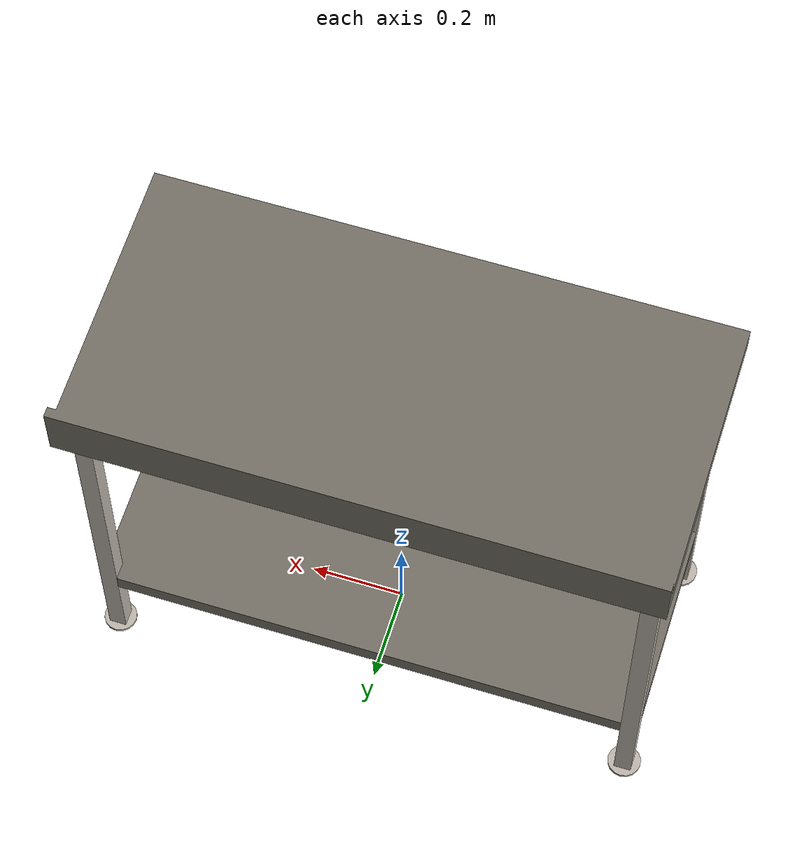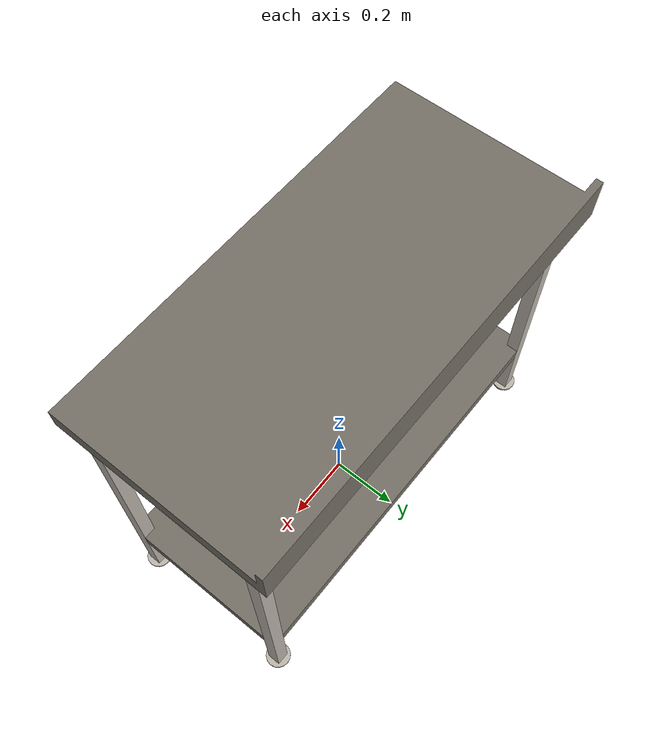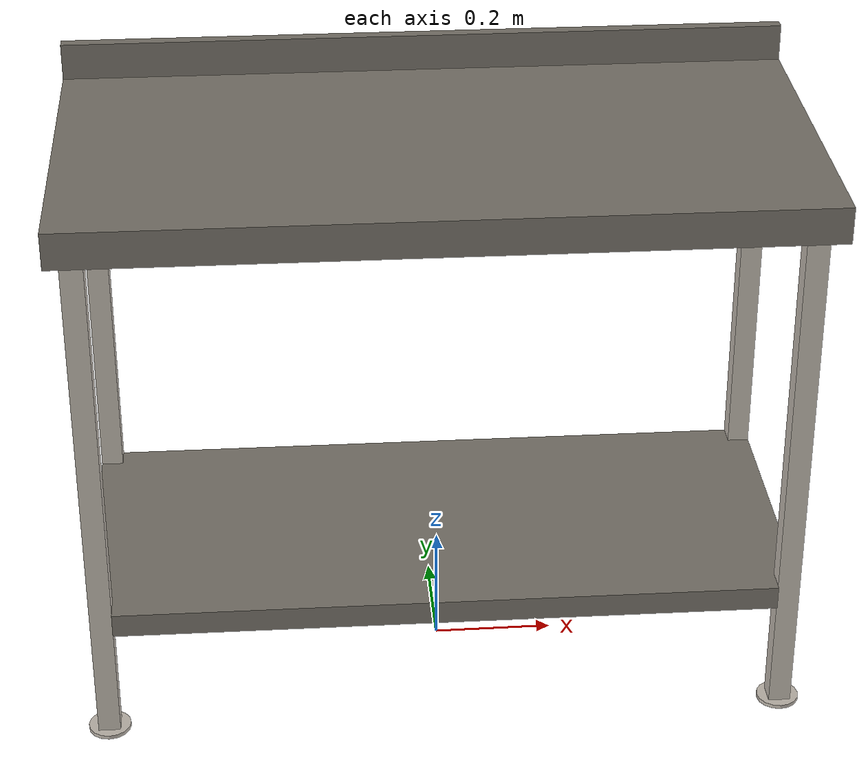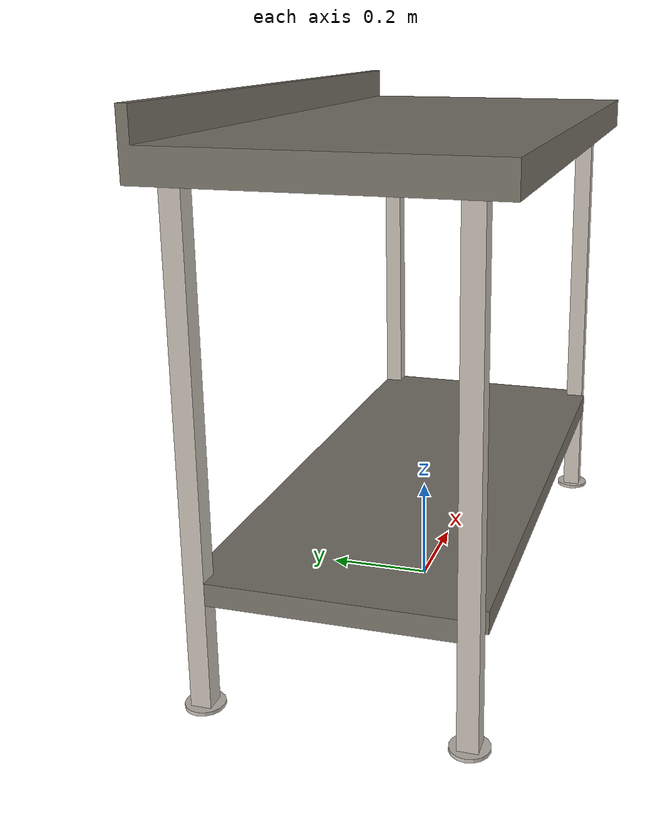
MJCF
<?xml version="1.0" encoding="utf-8"?>
<mujoco model="table">
  <compiler angle="radian" meshdir="assets" texturedir="assets" autolimits="true"/>
  <asset>
    <texture type="2d" name="table" file="table.png"/>
    <material name="table" specular="0.3" shininess="0.5" rgba="0.62 0.62 0.6 1" texture="table"/>
    <material name="table_legs" specular="0.3" shininess="0.5" rgba="1 1 1 1" texture="table"/>
    <mesh file="table.obj"/>
    <mesh file="table_legs.obj"/>
    <mesh file="table_collision_001.obj"/>
    <mesh file="table_collision_002.obj"/>
    <mesh file="table_collision_003.obj"/>
    <mesh file="table_collision_004.obj"/>
    <mesh file="table_collision_005.obj"/>
    <mesh file="table_collision_006.obj"/>
    <mesh file="table_collision_007.obj"/>
  </asset>
  <default>
    <default class="table">
      <default class="visual">
        <geom type="mesh" contype="0" conaffinity="0" group="2" euler="1.5708 0 0"/>
      </default>
      <default class="collision">
        <geom type="mesh" group="3" euler="1.5708 0 0" solimp="0.95 0.99 0.001" solref="0.004 1" friction="1.0 0.005 0.0001"/>
      </default>
    </default>
  </default>
  <worldbody>
    <body name="table" childclass="table">
      <geom name="mesh" mesh="table" class="visual" material="table" mass="3" density="500"  solimp="0.95 0.99 0.001" solref="0.004 1" friction="1.0 0.005 0.0001"/>
      <geom name="mesh_legs" mesh="table_legs" class="visual" material="table_legs" mass="3" density="500"  solimp="0.95 0.99 0.001" solref="0.004 1" friction="1.0 0.005 0.0001"/>
      <body name="counter">
      <geom name="collider_001" mesh="table_collision_001" class="collision" friction="1.1 0.01 0.01"  />
      </body>
      <geom name="collider_002" mesh="table_collision_002" class="collision"/>
      <geom name="collider_003" mesh="table_collision_003" class="collision"/>
      <geom name="collider_004" mesh="table_collision_004" class="collision"/>
      <geom name="collider_005" mesh="table_collision_005" class="collision"/>
      <geom name="collider_006" mesh="table_collision_006" class="collision"/>
      <geom name="collider_007" mesh="table_collision_007" class="collision"/>
    </body>
  </worldbody>
</mujoco>
